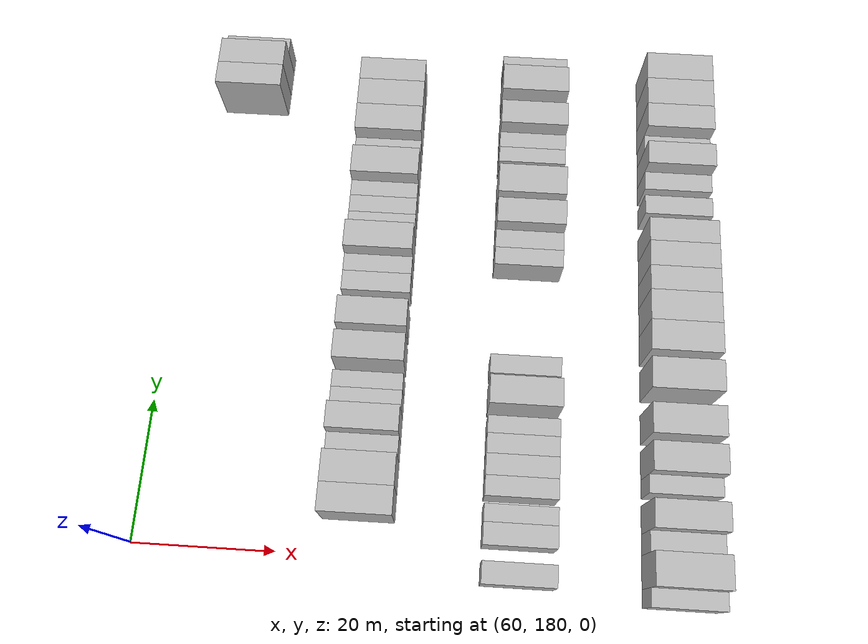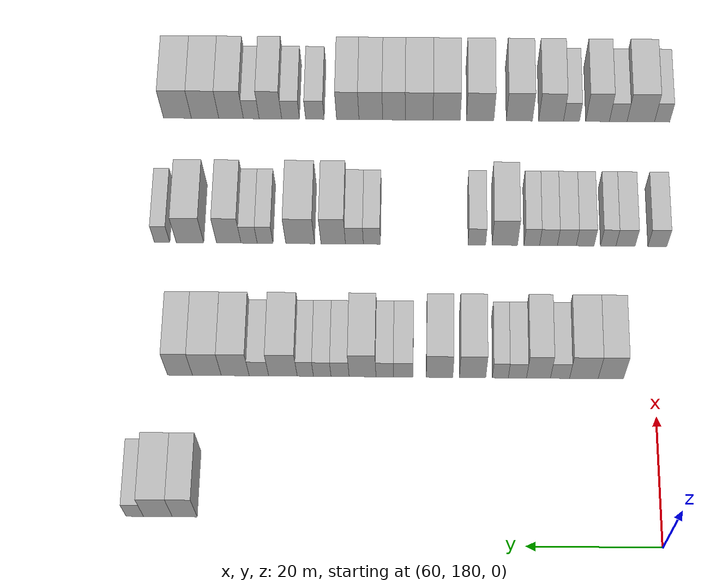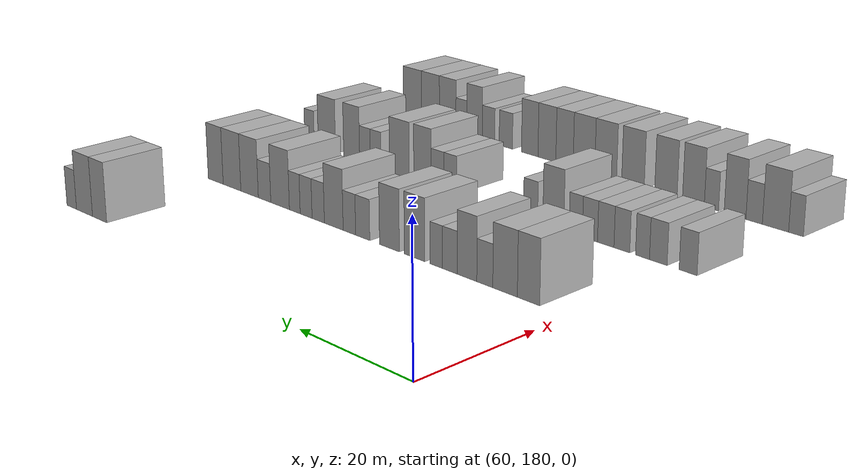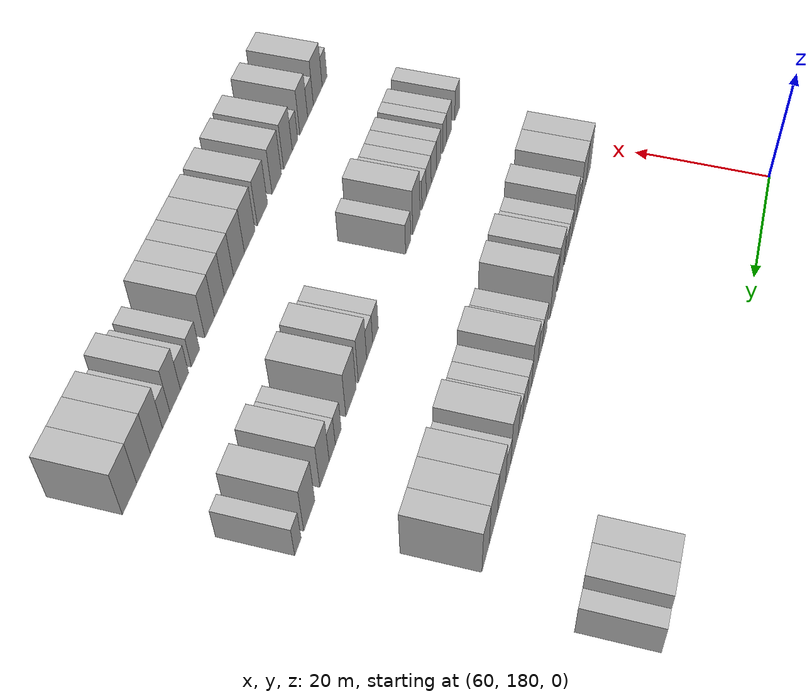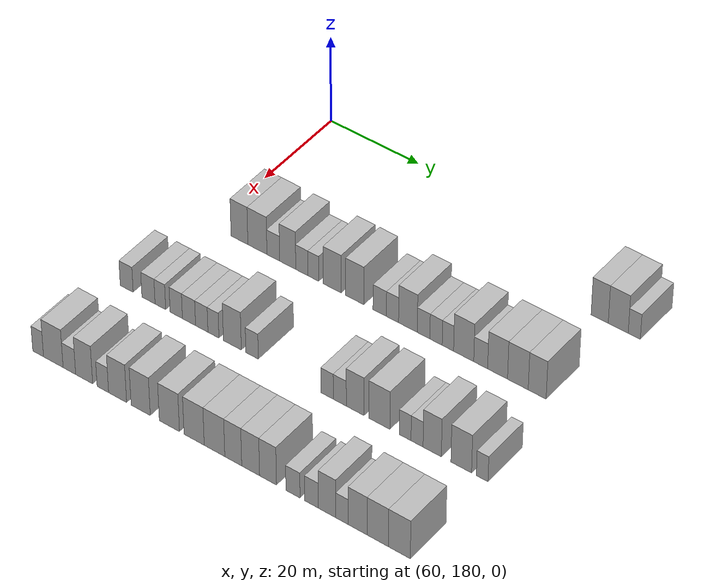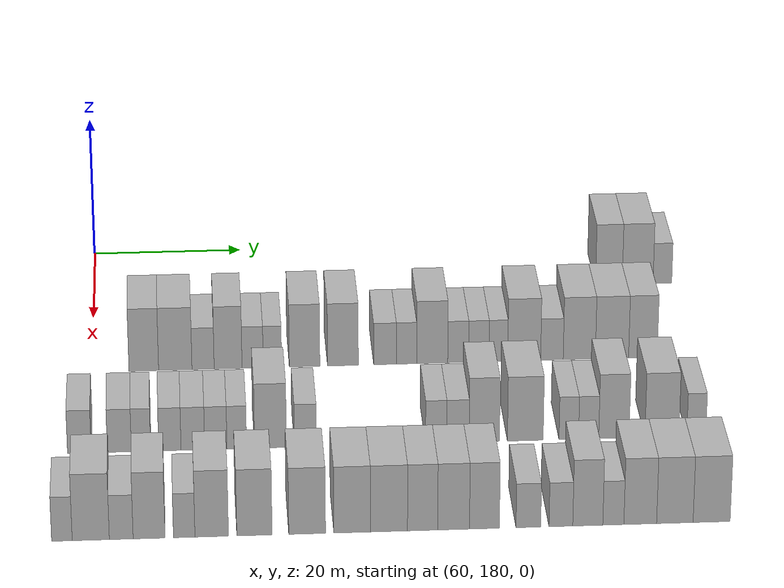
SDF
<sdf version="1.6">
 <world name="default">
  <model name="building_533">
   <static>1</static>
   <pose>69.0000 249.7890 0 0.000000 0.000000 0.000000</pose>
   <link name="link">
    <pose>0 0 4.50 0 0 0</pose>
    <collision name="collision"><geometry><box><size>10.0000 3.6465 9.0000</size></box></geometry></collision>
    <visual name="visual">
     <cast_shadows>0</cast_shadows>
     <geometry><box><size>10.0000 3.6465 9.0000</size></box></geometry>
     <material>
      <script>
       <uri>model://HANNAS_wall/materials/scripts</uri>
       <uri>model://HANNAS_wall/materials/textures</uri>
       <name>vrc/HANNAS_wall</name>
      </script>
     </material>
    </visual>
   </link>
  </model>
  <model name="building_534">
   <static>1</static>
   <pose>69.0000 253.7190 0 0.000000 0.000000 0.000000</pose>
   <link name="link">
    <pose>0 0 4.50 0 0 0</pose>
    <collision name="collision"><geometry><box><size>10.0000 4.2135 9.0000</size></box></geometry></collision>
    <visual name="visual">
     <cast_shadows>0</cast_shadows>
     <geometry><box><size>10.0000 4.2135 9.0000</size></box></geometry>
     <material>
      <script>
       <uri>model://HANNAS_wall/materials/scripts</uri>
       <uri>model://HANNAS_wall/materials/textures</uri>
       <name>vrc/HANNAS_wall</name>
      </script>
     </material>
    </visual>
   </link>
  </model>
  <model name="building_535">
   <static>1</static>
   <pose>69.0000 257.1007 0 0.000000 0.000000 0.000000</pose>
   <link name="link">
    <pose>0 0 3.00 0 0 0</pose>
    <collision name="collision"><geometry><box><size>10.0000 2.5497 6.0000</size></box></geometry></collision>
    <visual name="visual">
     <cast_shadows>0</cast_shadows>
     <geometry><box><size>10.0000 2.5497 6.0000</size></box></geometry>
     <material>
      <script>
       <uri>model://HANNAS_wall/materials/scripts</uri>
       <uri>model://HANNAS_wall/materials/textures</uri>
       <name>vrc/HANNAS_wall</name>
      </script>
     </material>
    </visual>
   </link>
  </model>
  <model name="building_708">
   <static>1</static>
   <pose>91.0000 186.6628 0 0.000000 0.000000 0.000000</pose>
   <link name="link">
    <pose>0 0 4.50 0 0 0</pose>
    <collision name="collision"><geometry><box><size>10.0000 3.8399 9.0000</size></box></geometry></collision>
    <visual name="visual">
     <cast_shadows>0</cast_shadows>
     <geometry><box><size>10.0000 3.8399 9.0000</size></box></geometry>
     <material>
      <script>
       <uri>model://HANNAS_wall/materials/scripts</uri>
       <uri>model://HANNAS_wall/materials/textures</uri>
       <name>vrc/HANNAS_wall</name>
      </script>
     </material>
    </visual>
   </link>
  </model>
  <model name="building_709">
   <static>1</static>
   <pose>91.0000 190.7460 0 0.000000 0.000000 0.000000</pose>
   <link name="link">
    <pose>0 0 4.50 0 0 0</pose>
    <collision name="collision"><geometry><box><size>10.0000 4.3265 9.0000</size></box></geometry></collision>
    <visual name="visual">
     <cast_shadows>0</cast_shadows>
     <geometry><box><size>10.0000 4.3265 9.0000</size></box></geometry>
     <material>
      <script>
       <uri>model://HANNAS_wall/materials/scripts</uri>
       <uri>model://HANNAS_wall/materials/textures</uri>
       <name>vrc/HANNAS_wall</name>
      </script>
     </material>
    </visual>
   </link>
  </model>
  <model name="building_710">
   <static>1</static>
   <pose>91.0000 194.3509 0 0.000000 0.000000 0.000000</pose>
   <link name="link">
    <pose>0 0 3.00 0 0 0</pose>
    <collision name="collision"><geometry><box><size>10.0000 2.8833 6.0000</size></box></geometry></collision>
    <visual name="visual">
     <cast_shadows>0</cast_shadows>
     <geometry><box><size>10.0000 2.8833 6.0000</size></box></geometry>
     <material>
      <script>
       <uri>model://HANNAS_wall/materials/scripts</uri>
       <uri>model://HANNAS_wall/materials/textures</uri>
       <name>vrc/HANNAS_wall</name>
      </script>
     </material>
    </visual>
   </link>
  </model>
  <model name="building_711">
   <static>1</static>
   <pose>91.0000 197.6028 0 0.000000 0.000000 0.000000</pose>
   <link name="link">
    <pose>0 0 4.50 0 0 0</pose>
    <collision name="collision"><geometry><box><size>10.0000 3.6205 9.0000</size></box></geometry></collision>
    <visual name="visual">
     <cast_shadows>0</cast_shadows>
     <geometry><box><size>10.0000 3.6205 9.0000</size></box></geometry>
     <material>
      <script>
       <uri>model://HANNAS_wall/materials/scripts</uri>
       <uri>model://HANNAS_wall/materials/textures</uri>
       <name>vrc/HANNAS_wall</name>
      </script>
     </material>
    </visual>
   </link>
  </model>
  <model name="building_712">
   <static>1</static>
   <pose>91.0000 200.7875 0 0.000000 0.000000 0.000000</pose>
   <link name="link">
    <pose>0 0 3.00 0 0 0</pose>
    <collision name="collision"><geometry><box><size>10.0000 2.7489 6.0000</size></box></geometry></collision>
    <visual name="visual">
     <cast_shadows>0</cast_shadows>
     <geometry><box><size>10.0000 2.7489 6.0000</size></box></geometry>
     <material>
      <script>
       <uri>model://HANNAS_wall/materials/scripts</uri>
       <uri>model://HANNAS_wall/materials/textures</uri>
       <name>vrc/HANNAS_wall</name>
      </script>
     </material>
    </visual>
   </link>
  </model>
  <model name="building_713">
   <static>1</static>
   <pose>91.0000 203.3646 0 0.000000 0.000000 0.000000</pose>
   <link name="link">
    <pose>0 0 3.00 0 0 0</pose>
    <collision name="collision"><geometry><box><size>10.0000 2.4052 6.0000</size></box></geometry></collision>
    <visual name="visual">
     <cast_shadows>0</cast_shadows>
     <geometry><box><size>10.0000 2.4052 6.0000</size></box></geometry>
     <material>
      <script>
       <uri>model://HANNAS_wall/materials/scripts</uri>
       <uri>model://HANNAS_wall/materials/textures</uri>
       <name>vrc/HANNAS_wall</name>
      </script>
     </material>
    </visual>
   </link>
  </model>
  <model name="building_714">
   <static>1</static>
   <pose>91.0000 207.5582 0 0.000000 0.000000 0.000000</pose>
   <link name="link">
    <pose>0 0 4.50 0 0 0</pose>
    <collision name="collision"><geometry><box><size>10.0000 3.9821 9.0000</size></box></geometry></collision>
    <visual name="visual">
     <cast_shadows>0</cast_shadows>
     <geometry><box><size>10.0000 3.9821 9.0000</size></box></geometry>
     <material>
      <script>
       <uri>model://HANNAS_wall/materials/scripts</uri>
       <uri>model://HANNAS_wall/materials/textures</uri>
       <name>vrc/HANNAS_wall</name>
      </script>
     </material>
    </visual>
   </link>
  </model>
  <model name="building_715">
   <static>1</static>
   <pose>91.0000 212.5564 0 0.000000 0.000000 0.000000</pose>
   <link name="link">
    <pose>0 0 4.50 0 0 0</pose>
    <collision name="collision"><geometry><box><size>10.0000 4.0143 9.0000</size></box></geometry></collision>
    <visual name="visual">
     <cast_shadows>0</cast_shadows>
     <geometry><box><size>10.0000 4.0143 9.0000</size></box></geometry>
     <material>
      <script>
       <uri>model://HANNAS_wall/materials/scripts</uri>
       <uri>model://HANNAS_wall/materials/textures</uri>
       <name>vrc/HANNAS_wall</name>
      </script>
     </material>
    </visual>
   </link>
  </model>
  <model name="building_716">
   <static>1</static>
   <pose>91.0000 218.0410 0 0.000000 0.000000 0.000000</pose>
   <link name="link">
    <pose>0 0 3.00 0 0 0</pose>
    <collision name="collision"><geometry><box><size>10.0000 2.9549 6.0000</size></box></geometry></collision>
    <visual name="visual">
     <cast_shadows>0</cast_shadows>
     <geometry><box><size>10.0000 2.9549 6.0000</size></box></geometry>
     <material>
      <script>
       <uri>model://HANNAS_wall/materials/scripts</uri>
       <uri>model://HANNAS_wall/materials/textures</uri>
       <name>vrc/HANNAS_wall</name>
      </script>
     </material>
    </visual>
   </link>
  </model>
  <model name="building_717">
   <static>1</static>
   <pose>91.0000 220.8439 0 0.000000 0.000000 0.000000</pose>
   <link name="link">
    <pose>0 0 3.00 0 0 0</pose>
    <collision name="collision"><geometry><box><size>10.0000 2.6510 6.0000</size></box></geometry></collision>
    <visual name="visual">
     <cast_shadows>0</cast_shadows>
     <geometry><box><size>10.0000 2.6510 6.0000</size></box></geometry>
     <material>
      <script>
       <uri>model://HANNAS_wall/materials/scripts</uri>
       <uri>model://HANNAS_wall/materials/textures</uri>
       <name>vrc/HANNAS_wall</name>
      </script>
     </material>
    </visual>
   </link>
  </model>
  <model name="building_718">
   <static>1</static>
   <pose>91.0000 224.2009 0 0.000000 0.000000 0.000000</pose>
   <link name="link">
    <pose>0 0 4.50 0 0 0</pose>
    <collision name="collision"><geometry><box><size>10.0000 4.0630 9.0000</size></box></geometry></collision>
    <visual name="visual">
     <cast_shadows>0</cast_shadows>
     <geometry><box><size>10.0000 4.0630 9.0000</size></box></geometry>
     <material>
      <script>
       <uri>model://HANNAS_wall/materials/scripts</uri>
       <uri>model://HANNAS_wall/materials/textures</uri>
       <name>vrc/HANNAS_wall</name>
      </script>
     </material>
    </visual>
   </link>
  </model>
  <model name="building_719">
   <static>1</static>
   <pose>91.0000 227.5975 0 0.000000 0.000000 0.000000</pose>
   <link name="link">
    <pose>0 0 3.00 0 0 0</pose>
    <collision name="collision"><geometry><box><size>10.0000 2.7301 6.0000</size></box></geometry></collision>
    <visual name="visual">
     <cast_shadows>0</cast_shadows>
     <geometry><box><size>10.0000 2.7301 6.0000</size></box></geometry>
     <material>
      <script>
       <uri>model://HANNAS_wall/materials/scripts</uri>
       <uri>model://HANNAS_wall/materials/textures</uri>
       <name>vrc/HANNAS_wall</name>
      </script>
     </material>
    </visual>
   </link>
  </model>
  <model name="building_720">
   <static>1</static>
   <pose>91.0000 230.2960 0 0.000000 0.000000 0.000000</pose>
   <link name="link">
    <pose>0 0 3.00 0 0 0</pose>
    <collision name="collision"><geometry><box><size>10.0000 2.6669 6.0000</size></box></geometry></collision>
    <visual name="visual">
     <cast_shadows>0</cast_shadows>
     <geometry><box><size>10.0000 2.6669 6.0000</size></box></geometry>
     <material>
      <script>
       <uri>model://HANNAS_wall/materials/scripts</uri>
       <uri>model://HANNAS_wall/materials/textures</uri>
       <name>vrc/HANNAS_wall</name>
      </script>
     </material>
    </visual>
   </link>
  </model>
  <model name="building_721">
   <static>1</static>
   <pose>91.0000 232.8555 0 0.000000 0.000000 0.000000</pose>
   <link name="link">
    <pose>0 0 3.00 0 0 0</pose>
    <collision name="collision"><geometry><box><size>10.0000 2.4523 6.0000</size></box></geometry></collision>
    <visual name="visual">
     <cast_shadows>0</cast_shadows>
     <geometry><box><size>10.0000 2.4523 6.0000</size></box></geometry>
     <material>
      <script>
       <uri>model://HANNAS_wall/materials/scripts</uri>
       <uri>model://HANNAS_wall/materials/textures</uri>
       <name>vrc/HANNAS_wall</name>
      </script>
     </material>
    </visual>
   </link>
  </model>
  <model name="building_722">
   <static>1</static>
   <pose>91.0000 236.2412 0 0.000000 0.000000 0.000000</pose>
   <link name="link">
    <pose>0 0 4.50 0 0 0</pose>
    <collision name="collision"><geometry><box><size>10.0000 4.3190 9.0000</size></box></geometry></collision>
    <visual name="visual">
     <cast_shadows>0</cast_shadows>
     <geometry><box><size>10.0000 4.3190 9.0000</size></box></geometry>
     <material>
      <script>
       <uri>model://HANNAS_wall/materials/scripts</uri>
       <uri>model://HANNAS_wall/materials/textures</uri>
       <name>vrc/HANNAS_wall</name>
      </script>
     </material>
    </visual>
   </link>
  </model>
  <model name="building_723">
   <static>1</static>
   <pose>91.0000 239.8791 0 0.000000 0.000000 0.000000</pose>
   <link name="link">
    <pose>0 0 3.00 0 0 0</pose>
    <collision name="collision"><geometry><box><size>10.0000 2.9568 6.0000</size></box></geometry></collision>
    <visual name="visual">
     <cast_shadows>0</cast_shadows>
     <geometry><box><size>10.0000 2.9568 6.0000</size></box></geometry>
     <material>
      <script>
       <uri>model://HANNAS_wall/materials/scripts</uri>
       <uri>model://HANNAS_wall/materials/textures</uri>
       <name>vrc/HANNAS_wall</name>
      </script>
     </material>
    </visual>
   </link>
  </model>
  <model name="building_724">
   <static>1</static>
   <pose>91.0000 243.4673 0 0.000000 0.000000 0.000000</pose>
   <link name="link">
    <pose>0 0 4.50 0 0 0</pose>
    <collision name="collision"><geometry><box><size>10.0000 4.2196 9.0000</size></box></geometry></collision>
    <visual name="visual">
     <cast_shadows>0</cast_shadows>
     <geometry><box><size>10.0000 4.2196 9.0000</size></box></geometry>
     <material>
      <script>
       <uri>model://HANNAS_wall/materials/scripts</uri>
       <uri>model://HANNAS_wall/materials/textures</uri>
       <name>vrc/HANNAS_wall</name>
      </script>
     </material>
    </visual>
   </link>
  </model>
  <model name="building_725">
   <static>1</static>
   <pose>91.0000 247.7592 0 0.000000 0.000000 0.000000</pose>
   <link name="link">
    <pose>0 0 4.50 0 0 0</pose>
    <collision name="collision"><geometry><box><size>10.0000 4.3641 9.0000</size></box></geometry></collision>
    <visual name="visual">
     <cast_shadows>0</cast_shadows>
     <geometry><box><size>10.0000 4.3641 9.0000</size></box></geometry>
     <material>
      <script>
       <uri>model://HANNAS_wall/materials/scripts</uri>
       <uri>model://HANNAS_wall/materials/textures</uri>
       <name>vrc/HANNAS_wall</name>
      </script>
     </material>
    </visual>
   </link>
  </model>
  <model name="building_726">
   <static>1</static>
   <pose>91.0000 251.8215 0 0.000000 0.000000 0.000000</pose>
   <link name="link">
    <pose>0 0 4.50 0 0 0</pose>
    <collision name="collision"><geometry><box><size>10.0000 3.7606 9.0000</size></box></geometry></collision>
    <visual name="visual">
     <cast_shadows>0</cast_shadows>
     <geometry><box><size>10.0000 3.7606 9.0000</size></box></geometry>
     <material>
      <script>
       <uri>model://HANNAS_wall/materials/scripts</uri>
       <uri>model://HANNAS_wall/materials/textures</uri>
       <name>vrc/HANNAS_wall</name>
      </script>
     </material>
    </visual>
   </link>
  </model>
  <model name="building_883">
   <static>1</static>
   <pose>113.0000 178.6025 0 0.000000 0.000000 0.000000</pose>
   <link name="link">
    <pose>0 0 3.00 0 0 0</pose>
    <collision name="collision"><geometry><box><size>10.0000 2.9514 6.0000</size></box></geometry></collision>
    <visual name="visual">
     <cast_shadows>0</cast_shadows>
     <geometry><box><size>10.0000 2.9514 6.0000</size></box></geometry>
     <material>
      <script>
       <uri>model://HANNAS_wall/materials/scripts</uri>
       <uri>model://HANNAS_wall/materials/textures</uri>
       <name>vrc/HANNAS_wall</name>
      </script>
     </material>
    </visual>
   </link>
  </model>
  <model name="building_884">
   <static>1</static>
   <pose>113.0000 183.5753 0 0.000000 0.000000 0.000000</pose>
   <link name="link">
    <pose>0 0 3.00 0 0 0</pose>
    <collision name="collision"><geometry><box><size>10.0000 2.9942 6.0000</size></box></geometry></collision>
    <visual name="visual">
     <cast_shadows>0</cast_shadows>
     <geometry><box><size>10.0000 2.9942 6.0000</size></box></geometry>
     <material>
      <script>
       <uri>model://HANNAS_wall/materials/scripts</uri>
       <uri>model://HANNAS_wall/materials/textures</uri>
       <name>vrc/HANNAS_wall</name>
      </script>
     </material>
    </visual>
   </link>
  </model>
  <model name="building_885">
   <static>1</static>
   <pose>113.0000 186.2754 0 0.000000 0.000000 0.000000</pose>
   <link name="link">
    <pose>0 0 3.00 0 0 0</pose>
    <collision name="collision"><geometry><box><size>10.0000 2.4059 6.0000</size></box></geometry></collision>
    <visual name="visual">
     <cast_shadows>0</cast_shadows>
     <geometry><box><size>10.0000 2.4059 6.0000</size></box></geometry>
     <material>
      <script>
       <uri>model://HANNAS_wall/materials/scripts</uri>
       <uri>model://HANNAS_wall/materials/textures</uri>
       <name>vrc/HANNAS_wall</name>
      </script>
     </material>
    </visual>
   </link>
  </model>
  <model name="building_886">
   <static>1</static>
   <pose>113.0000 189.8701 0 0.000000 0.000000 0.000000</pose>
   <link name="link">
    <pose>0 0 3.00 0 0 0</pose>
    <collision name="collision"><geometry><box><size>10.0000 2.7835 6.0000</size></box></geometry></collision>
    <visual name="visual">
     <cast_shadows>0</cast_shadows>
     <geometry><box><size>10.0000 2.7835 6.0000</size></box></geometry>
     <material>
      <script>
       <uri>model://HANNAS_wall/materials/scripts</uri>
       <uri>model://HANNAS_wall/materials/textures</uri>
       <name>vrc/HANNAS_wall</name>
      </script>
     </material>
    </visual>
   </link>
  </model>
  <model name="building_887">
   <static>1</static>
   <pose>113.0000 192.7356 0 0.000000 0.000000 0.000000</pose>
   <link name="link">
    <pose>0 0 3.00 0 0 0</pose>
    <collision name="collision"><geometry><box><size>10.0000 2.9476 6.0000</size></box></geometry></collision>
    <visual name="visual">
     <cast_shadows>0</cast_shadows>
     <geometry><box><size>10.0000 2.9476 6.0000</size></box></geometry>
     <material>
      <script>
       <uri>model://HANNAS_wall/materials/scripts</uri>
       <uri>model://HANNAS_wall/materials/textures</uri>
       <name>vrc/HANNAS_wall</name>
      </script>
     </material>
    </visual>
   </link>
  </model>
  <model name="building_888">
   <static>1</static>
   <pose>113.0000 195.5973 0 0.000000 0.000000 0.000000</pose>
   <link name="link">
    <pose>0 0 3.00 0 0 0</pose>
    <collision name="collision"><geometry><box><size>10.0000 2.7757 6.0000</size></box></geometry></collision>
    <visual name="visual">
     <cast_shadows>0</cast_shadows>
     <geometry><box><size>10.0000 2.7757 6.0000</size></box></geometry>
     <material>
      <script>
       <uri>model://HANNAS_wall/materials/scripts</uri>
       <uri>model://HANNAS_wall/materials/textures</uri>
       <name>vrc/HANNAS_wall</name>
      </script>
     </material>
    </visual>
   </link>
  </model>
  <model name="building_889">
   <static>1</static>
   <pose>113.0000 198.2112 0 0.000000 0.000000 0.000000</pose>
   <link name="link">
    <pose>0 0 3.00 0 0 0</pose>
    <collision name="collision"><geometry><box><size>10.0000 2.4521 6.0000</size></box></geometry></collision>
    <visual name="visual">
     <cast_shadows>0</cast_shadows>
     <geometry><box><size>10.0000 2.4521 6.0000</size></box></geometry>
     <material>
      <script>
       <uri>model://HANNAS_wall/materials/scripts</uri>
       <uri>model://HANNAS_wall/materials/textures</uri>
       <name>vrc/HANNAS_wall</name>
      </script>
     </material>
    </visual>
   </link>
  </model>
  <model name="building_890">
   <static>1</static>
   <pose>113.0000 202.4289 0 0.000000 0.000000 0.000000</pose>
   <link name="link">
    <pose>0 0 4.50 0 0 0</pose>
    <collision name="collision"><geometry><box><size>10.0000 3.9834 9.0000</size></box></geometry></collision>
    <visual name="visual">
     <cast_shadows>0</cast_shadows>
     <geometry><box><size>10.0000 3.9834 9.0000</size></box></geometry>
     <material>
      <script>
       <uri>model://HANNAS_wall/materials/scripts</uri>
       <uri>model://HANNAS_wall/materials/textures</uri>
       <name>vrc/HANNAS_wall</name>
      </script>
     </material>
    </visual>
   </link>
  </model>
  <model name="building_891">
   <static>1</static>
   <pose>113.0000 206.7985 0 0.000000 0.000000 0.000000</pose>
   <link name="link">
    <pose>0 0 3.00 0 0 0</pose>
    <collision name="collision"><geometry><box><size>10.0000 2.7558 6.0000</size></box></geometry></collision>
    <visual name="visual">
     <cast_shadows>0</cast_shadows>
     <geometry><box><size>10.0000 2.7558 6.0000</size></box></geometry>
     <material>
      <script>
       <uri>model://HANNAS_wall/materials/scripts</uri>
       <uri>model://HANNAS_wall/materials/textures</uri>
       <name>vrc/HANNAS_wall</name>
      </script>
     </material>
    </visual>
   </link>
  </model>
  <model name="building_892">
   <static>1</static>
   <pose>113.0000 223.1789 0 0.000000 0.000000 0.000000</pose>
   <link name="link">
    <pose>0 0 3.00 0 0 0</pose>
    <collision name="collision"><geometry><box><size>10.0000 2.6683 6.0000</size></box></geometry></collision>
    <visual name="visual">
     <cast_shadows>0</cast_shadows>
     <geometry><box><size>10.0000 2.6683 6.0000</size></box></geometry>
     <material>
      <script>
       <uri>model://HANNAS_wall/materials/scripts</uri>
       <uri>model://HANNAS_wall/materials/textures</uri>
       <name>vrc/HANNAS_wall</name>
      </script>
     </material>
    </visual>
   </link>
  </model>
  <model name="building_893">
   <static>1</static>
   <pose>113.0000 225.9132 0 0.000000 0.000000 0.000000</pose>
   <link name="link">
    <pose>0 0 3.00 0 0 0</pose>
    <collision name="collision"><geometry><box><size>10.0000 2.8003 6.0000</size></box></geometry></collision>
    <visual name="visual">
     <cast_shadows>0</cast_shadows>
     <geometry><box><size>10.0000 2.8003 6.0000</size></box></geometry>
     <material>
      <script>
       <uri>model://HANNAS_wall/materials/scripts</uri>
       <uri>model://HANNAS_wall/materials/textures</uri>
       <name>vrc/HANNAS_wall</name>
      </script>
     </material>
    </visual>
   </link>
  </model>
  <model name="building_894">
   <static>1</static>
   <pose>113.0000 229.2231 0 0.000000 0.000000 0.000000</pose>
   <link name="link">
    <pose>0 0 4.50 0 0 0</pose>
    <collision name="collision"><geometry><box><size>10.0000 3.8196 9.0000</size></box></geometry></collision>
    <visual name="visual">
     <cast_shadows>0</cast_shadows>
     <geometry><box><size>10.0000 3.8196 9.0000</size></box></geometry>
     <material>
      <script>
       <uri>model://HANNAS_wall/materials/scripts</uri>
       <uri>model://HANNAS_wall/materials/textures</uri>
       <name>vrc/HANNAS_wall</name>
      </script>
     </material>
    </visual>
   </link>
  </model>
  <model name="building_895">
   <static>1</static>
   <pose>113.0000 234.3819 0 0.000000 0.000000 0.000000</pose>
   <link name="link">
    <pose>0 0 4.50 0 0 0</pose>
    <collision name="collision"><geometry><box><size>10.0000 4.4979 9.0000</size></box></geometry></collision>
    <visual name="visual">
     <cast_shadows>0</cast_shadows>
     <geometry><box><size>10.0000 4.4979 9.0000</size></box></geometry>
     <material>
      <script>
       <uri>model://HANNAS_wall/materials/scripts</uri>
       <uri>model://HANNAS_wall/materials/textures</uri>
       <name>vrc/HANNAS_wall</name>
      </script>
     </material>
    </visual>
   </link>
  </model>
  <model name="building_896">
   <static>1</static>
   <pose>113.0000 239.8631 0 0.000000 0.000000 0.000000</pose>
   <link name="link">
    <pose>0 0 3.00 0 0 0</pose>
    <collision name="collision"><geometry><box><size>10.0000 2.4645 6.0000</size></box></geometry></collision>
    <visual name="visual">
     <cast_shadows>0</cast_shadows>
     <geometry><box><size>10.0000 2.4645 6.0000</size></box></geometry>
     <material>
      <script>
       <uri>model://HANNAS_wall/materials/scripts</uri>
       <uri>model://HANNAS_wall/materials/textures</uri>
       <name>vrc/HANNAS_wall</name>
      </script>
     </material>
    </visual>
   </link>
  </model>
  <model name="building_897">
   <static>1</static>
   <pose>113.0000 242.3641 0 0.000000 0.000000 0.000000</pose>
   <link name="link">
    <pose>0 0 3.00 0 0 0</pose>
    <collision name="collision"><geometry><box><size>10.0000 2.5375 6.0000</size></box></geometry></collision>
    <visual name="visual">
     <cast_shadows>0</cast_shadows>
     <geometry><box><size>10.0000 2.5375 6.0000</size></box></geometry>
     <material>
      <script>
       <uri>model://HANNAS_wall/materials/scripts</uri>
       <uri>model://HANNAS_wall/materials/textures</uri>
       <name>vrc/HANNAS_wall</name>
      </script>
     </material>
    </visual>
   </link>
  </model>
  <model name="building_898">
   <static>1</static>
   <pose>113.0000 245.5498 0 0.000000 0.000000 0.000000</pose>
   <link name="link">
    <pose>0 0 4.50 0 0 0</pose>
    <collision name="collision"><geometry><box><size>10.0000 3.8339 9.0000</size></box></geometry></collision>
    <visual name="visual">
     <cast_shadows>0</cast_shadows>
     <geometry><box><size>10.0000 3.8339 9.0000</size></box></geometry>
     <material>
      <script>
       <uri>model://HANNAS_wall/materials/scripts</uri>
       <uri>model://HANNAS_wall/materials/textures</uri>
       <name>vrc/HANNAS_wall</name>
      </script>
     </material>
    </visual>
   </link>
  </model>
  <model name="building_899">
   <static>1</static>
   <pose>113.0000 251.6136 0 0.000000 0.000000 0.000000</pose>
   <link name="link">
    <pose>0 0 4.50 0 0 0</pose>
    <collision name="collision"><geometry><box><size>10.0000 4.2938 9.0000</size></box></geometry></collision>
    <visual name="visual">
     <cast_shadows>0</cast_shadows>
     <geometry><box><size>10.0000 4.2938 9.0000</size></box></geometry>
     <material>
      <script>
       <uri>model://HANNAS_wall/materials/scripts</uri>
       <uri>model://HANNAS_wall/materials/textures</uri>
       <name>vrc/HANNAS_wall</name>
      </script>
     </material>
    </visual>
   </link>
  </model>
  <model name="building_900">
   <static>1</static>
   <pose>113.0000 255.9635 0 0.000000 0.000000 0.000000</pose>
   <link name="link">
    <pose>0 0 3.00 0 0 0</pose>
    <collision name="collision"><geometry><box><size>10.0000 2.4061 6.0000</size></box></geometry></collision>
    <visual name="visual">
     <cast_shadows>0</cast_shadows>
     <geometry><box><size>10.0000 2.4061 6.0000</size></box></geometry>
     <material>
      <script>
       <uri>model://HANNAS_wall/materials/scripts</uri>
       <uri>model://HANNAS_wall/materials/textures</uri>
       <name>vrc/HANNAS_wall</name>
      </script>
     </material>
    </visual>
   </link>
  </model>
  <model name="building_1071">
   <static>1</static>
   <pose>135.0000 176.8022 0 0.000000 0.000000 0.000000</pose>
   <link name="link">
    <pose>0 0 3.00 0 0 0</pose>
    <collision name="collision"><geometry><box><size>10.0000 2.4514 6.0000</size></box></geometry></collision>
    <visual name="visual">
     <cast_shadows>0</cast_shadows>
     <geometry><box><size>10.0000 2.4514 6.0000</size></box></geometry>
     <material>
      <script>
       <uri>model://HANNAS_wall/materials/scripts</uri>
       <uri>model://HANNAS_wall/materials/textures</uri>
       <name>vrc/HANNAS_wall</name>
      </script>
     </material>
    </visual>
   </link>
  </model>
  <model name="building_1072">
   <static>1</static>
   <pose>135.0000 180.2424 0 0.000000 0.000000 0.000000</pose>
   <link name="link">
    <pose>0 0 4.50 0 0 0</pose>
    <collision name="collision"><geometry><box><size>10.0000 4.4291 9.0000</size></box></geometry></collision>
    <visual name="visual">
     <cast_shadows>0</cast_shadows>
     <geometry><box><size>10.0000 4.4291 9.0000</size></box></geometry>
     <material>
      <script>
       <uri>model://HANNAS_wall/materials/scripts</uri>
       <uri>model://HANNAS_wall/materials/textures</uri>
       <name>vrc/HANNAS_wall</name>
      </script>
     </material>
    </visual>
   </link>
  </model>
  <model name="building_1073">
   <static>1</static>
   <pose>135.0000 183.8774 0 0.000000 0.000000 0.000000</pose>
   <link name="link">
    <pose>0 0 3.00 0 0 0</pose>
    <collision name="collision"><geometry><box><size>10.0000 2.8407 6.0000</size></box></geometry></collision>
    <visual name="visual">
     <cast_shadows>0</cast_shadows>
     <geometry><box><size>10.0000 2.8407 6.0000</size></box></geometry>
     <material>
      <script>
       <uri>model://HANNAS_wall/materials/scripts</uri>
       <uri>model://HANNAS_wall/materials/textures</uri>
       <name>vrc/HANNAS_wall</name>
      </script>
     </material>
    </visual>
   </link>
  </model>
  <model name="building_1074">
   <static>1</static>
   <pose>135.0000 187.2081 0 0.000000 0.000000 0.000000</pose>
   <link name="link">
    <pose>0 0 4.50 0 0 0</pose>
    <collision name="collision"><geometry><box><size>10.0000 3.8208 9.0000</size></box></geometry></collision>
    <visual name="visual">
     <cast_shadows>0</cast_shadows>
     <geometry><box><size>10.0000 3.8208 9.0000</size></box></geometry>
     <material>
      <script>
       <uri>model://HANNAS_wall/materials/scripts</uri>
       <uri>model://HANNAS_wall/materials/textures</uri>
       <name>vrc/HANNAS_wall</name>
      </script>
     </material>
    </visual>
   </link>
  </model>
  <model name="building_1075">
   <static>1</static>
   <pose>135.0000 191.4019 0 0.000000 0.000000 0.000000</pose>
   <link name="link">
    <pose>0 0 3.00 0 0 0</pose>
    <collision name="collision"><geometry><box><size>10.0000 2.5669 6.0000</size></box></geometry></collision>
    <visual name="visual">
     <cast_shadows>0</cast_shadows>
     <geometry><box><size>10.0000 2.5669 6.0000</size></box></geometry>
     <material>
      <script>
       <uri>model://HANNAS_wall/materials/scripts</uri>
       <uri>model://HANNAS_wall/materials/textures</uri>
       <name>vrc/HANNAS_wall</name>
      </script>
     </material>
    </visual>
   </link>
  </model>
  <model name="building_1076">
   <static>1</static>
   <pose>135.0000 194.6913 0 0.000000 0.000000 0.000000</pose>
   <link name="link">
    <pose>0 0 4.50 0 0 0</pose>
    <collision name="collision"><geometry><box><size>10.0000 4.0118 9.0000</size></box></geometry></collision>
    <visual name="visual">
     <cast_shadows>0</cast_shadows>
     <geometry><box><size>10.0000 4.0118 9.0000</size></box></geometry>
     <material>
      <script>
       <uri>model://HANNAS_wall/materials/scripts</uri>
       <uri>model://HANNAS_wall/materials/textures</uri>
       <name>vrc/HANNAS_wall</name>
      </script>
     </material>
    </visual>
   </link>
  </model>
  <model name="building_1077">
   <static>1</static>
   <pose>135.0000 199.8107 0 0.000000 0.000000 0.000000</pose>
   <link name="link">
    <pose>0 0 4.50 0 0 0</pose>
    <collision name="collision"><geometry><box><size>10.0000 4.2271 9.0000</size></box></geometry></collision>
    <visual name="visual">
     <cast_shadows>0</cast_shadows>
     <geometry><box><size>10.0000 4.2271 9.0000</size></box></geometry>
     <material>
      <script>
       <uri>model://HANNAS_wall/materials/scripts</uri>
       <uri>model://HANNAS_wall/materials/textures</uri>
       <name>vrc/HANNAS_wall</name>
      </script>
     </material>
    </visual>
   </link>
  </model>
  <model name="building_1078">
   <static>1</static>
   <pose>135.0000 206.1301 0 0.000000 0.000000 0.000000</pose>
   <link name="link">
    <pose>0 0 4.50 0 0 0</pose>
    <collision name="collision"><geometry><box><size>10.0000 4.4117 9.0000</size></box></geometry></collision>
    <visual name="visual">
     <cast_shadows>0</cast_shadows>
     <geometry><box><size>10.0000 4.4117 9.0000</size></box></geometry>
     <material>
      <script>
       <uri>model://HANNAS_wall/materials/scripts</uri>
       <uri>model://HANNAS_wall/materials/textures</uri>
       <name>vrc/HANNAS_wall</name>
      </script>
     </material>
    </visual>
   </link>
  </model>
  <model name="building_1079">
   <static>1</static>
   <pose>135.0000 211.5339 0 0.000000 0.000000 0.000000</pose>
   <link name="link">
    <pose>0 0 4.50 0 0 0</pose>
    <collision name="collision"><geometry><box><size>10.0000 4.3959 9.0000</size></box></geometry></collision>
    <visual name="visual">
     <cast_shadows>0</cast_shadows>
     <geometry><box><size>10.0000 4.3959 9.0000</size></box></geometry>
     <material>
      <script>
       <uri>model://HANNAS_wall/materials/scripts</uri>
       <uri>model://HANNAS_wall/materials/textures</uri>
       <name>vrc/HANNAS_wall</name>
      </script>
     </material>
    </visual>
   </link>
  </model>
  <model name="building_1080">
   <static>1</static>
   <pose>135.0000 215.9590 0 0.000000 0.000000 0.000000</pose>
   <link name="link">
    <pose>0 0 4.50 0 0 0</pose>
    <collision name="collision"><geometry><box><size>10.0000 4.4543 9.0000</size></box></geometry></collision>
    <visual name="visual">
     <cast_shadows>0</cast_shadows>
     <geometry><box><size>10.0000 4.4543 9.0000</size></box></geometry>
     <material>
      <script>
       <uri>model://HANNAS_wall/materials/scripts</uri>
       <uri>model://HANNAS_wall/materials/textures</uri>
       <name>vrc/HANNAS_wall</name>
      </script>
     </material>
    </visual>
   </link>
  </model>
  <model name="building_1081">
   <static>1</static>
   <pose>135.0000 220.0057 0 0.000000 0.000000 0.000000</pose>
   <link name="link">
    <pose>0 0 4.50 0 0 0</pose>
    <collision name="collision"><geometry><box><size>10.0000 3.6392 9.0000</size></box></geometry></collision>
    <visual name="visual">
     <cast_shadows>0</cast_shadows>
     <geometry><box><size>10.0000 3.6392 9.0000</size></box></geometry>
     <material>
      <script>
       <uri>model://HANNAS_wall/materials/scripts</uri>
       <uri>model://HANNAS_wall/materials/textures</uri>
       <name>vrc/HANNAS_wall</name>
      </script>
     </material>
    </visual>
   </link>
  </model>
  <model name="building_1082">
   <static>1</static>
   <pose>135.0000 223.7382 0 0.000000 0.000000 0.000000</pose>
   <link name="link">
    <pose>0 0 4.50 0 0 0</pose>
    <collision name="collision"><geometry><box><size>10.0000 3.8257 9.0000</size></box></geometry></collision>
    <visual name="visual">
     <cast_shadows>0</cast_shadows>
     <geometry><box><size>10.0000 3.8257 9.0000</size></box></geometry>
     <material>
      <script>
       <uri>model://HANNAS_wall/materials/scripts</uri>
       <uri>model://HANNAS_wall/materials/textures</uri>
       <name>vrc/HANNAS_wall</name>
      </script>
     </material>
    </visual>
   </link>
  </model>
  <model name="building_1083">
   <static>1</static>
   <pose>135.0000 227.4544 0 0.000000 0.000000 0.000000</pose>
   <link name="link">
    <pose>0 0 4.50 0 0 0</pose>
    <collision name="collision"><geometry><box><size>10.0000 3.6068 9.0000</size></box></geometry></collision>
    <visual name="visual">
     <cast_shadows>0</cast_shadows>
     <geometry><box><size>10.0000 3.6068 9.0000</size></box></geometry>
     <material>
      <script>
       <uri>model://HANNAS_wall/materials/scripts</uri>
       <uri>model://HANNAS_wall/materials/textures</uri>
       <name>vrc/HANNAS_wall</name>
      </script>
     </material>
    </visual>
   </link>
  </model>
  <model name="building_1084">
   <static>1</static>
   <pose>135.0000 232.7521 0 0.000000 0.000000 0.000000</pose>
   <link name="link">
    <pose>0 0 3.00 0 0 0</pose>
    <collision name="collision"><geometry><box><size>10.0000 2.9885 6.0000</size></box></geometry></collision>
    <visual name="visual">
     <cast_shadows>0</cast_shadows>
     <geometry><box><size>10.0000 2.9885 6.0000</size></box></geometry>
     <material>
      <script>
       <uri>model://HANNAS_wall/materials/scripts</uri>
       <uri>model://HANNAS_wall/materials/textures</uri>
       <name>vrc/HANNAS_wall</name>
      </script>
     </material>
    </visual>
   </link>
  </model>
  <model name="building_1085">
   <static>1</static>
   <pose>135.0000 236.6806 0 0.000000 0.000000 0.000000</pose>
   <link name="link">
    <pose>0 0 3.00 0 0 0</pose>
    <collision name="collision"><geometry><box><size>10.0000 2.8684 6.0000</size></box></geometry></collision>
    <visual name="visual">
     <cast_shadows>0</cast_shadows>
     <geometry><box><size>10.0000 2.8684 6.0000</size></box></geometry>
     <material>
      <script>
       <uri>model://HANNAS_wall/materials/scripts</uri>
       <uri>model://HANNAS_wall/materials/textures</uri>
       <name>vrc/HANNAS_wall</name>
      </script>
     </material>
    </visual>
   </link>
  </model>
  <model name="building_1086">
   <static>1</static>
   <pose>135.0000 239.9316 0 0.000000 0.000000 0.000000</pose>
   <link name="link">
    <pose>0 0 4.50 0 0 0</pose>
    <collision name="collision"><geometry><box><size>10.0000 3.6337 9.0000</size></box></geometry></collision>
    <visual name="visual">
     <cast_shadows>0</cast_shadows>
     <geometry><box><size>10.0000 3.6337 9.0000</size></box></geometry>
     <material>
      <script>
       <uri>model://HANNAS_wall/materials/scripts</uri>
       <uri>model://HANNAS_wall/materials/textures</uri>
       <name>vrc/HANNAS_wall</name>
      </script>
     </material>
    </visual>
   </link>
  </model>
  <model name="building_1087">
   <static>1</static>
   <pose>135.0000 243.0220 0 0.000000 0.000000 0.000000</pose>
   <link name="link">
    <pose>0 0 3.00 0 0 0</pose>
    <collision name="collision"><geometry><box><size>10.0000 2.5471 6.0000</size></box></geometry></collision>
    <visual name="visual">
     <cast_shadows>0</cast_shadows>
     <geometry><box><size>10.0000 2.5471 6.0000</size></box></geometry>
     <material>
      <script>
       <uri>model://HANNAS_wall/materials/scripts</uri>
       <uri>model://HANNAS_wall/materials/textures</uri>
       <name>vrc/HANNAS_wall</name>
      </script>
     </material>
    </visual>
   </link>
  </model>
  <model name="building_1088">
   <static>1</static>
   <pose>135.0000 246.2780 0 0.000000 0.000000 0.000000</pose>
   <link name="link">
    <pose>0 0 4.50 0 0 0</pose>
    <collision name="collision"><geometry><box><size>10.0000 3.9648 9.0000</size></box></geometry></collision>
    <visual name="visual">
     <cast_shadows>0</cast_shadows>
     <geometry><box><size>10.0000 3.9648 9.0000</size></box></geometry>
     <material>
      <script>
       <uri>model://HANNAS_wall/materials/scripts</uri>
       <uri>model://HANNAS_wall/materials/textures</uri>
       <name>vrc/HANNAS_wall</name>
      </script>
     </material>
    </visual>
   </link>
  </model>
  <model name="building_1089">
   <static>1</static>
   <pose>135.0000 250.4716 0 0.000000 0.000000 0.000000</pose>
   <link name="link">
    <pose>0 0 4.50 0 0 0</pose>
    <collision name="collision"><geometry><box><size>10.0000 4.4224 9.0000</size></box></geometry></collision>
    <visual name="visual">
     <cast_shadows>0</cast_shadows>
     <geometry><box><size>10.0000 4.4224 9.0000</size></box></geometry>
     <material>
      <script>
       <uri>model://HANNAS_wall/materials/scripts</uri>
       <uri>model://HANNAS_wall/materials/textures</uri>
       <name>vrc/HANNAS_wall</name>
      </script>
     </material>
    </visual>
   </link>
  </model>
  <model name="building_1090">
   <static>1</static>
   <pose>135.0000 254.9290 0 0.000000 0.000000 0.000000</pose>
   <link name="link">
    <pose>0 0 4.50 0 0 0</pose>
    <collision name="collision"><geometry><box><size>10.0000 4.4926 9.0000</size></box></geometry></collision>
    <visual name="visual">
     <cast_shadows>0</cast_shadows>
     <geometry><box><size>10.0000 4.4926 9.0000</size></box></geometry>
     <material>
      <script>
       <uri>model://HANNAS_wall/materials/scripts</uri>
       <uri>model://HANNAS_wall/materials/textures</uri>
       <name>vrc/HANNAS_wall</name>
      </script>
     </material>
    </visual>
   </link>
  </model>
 </world>
</sdf>
